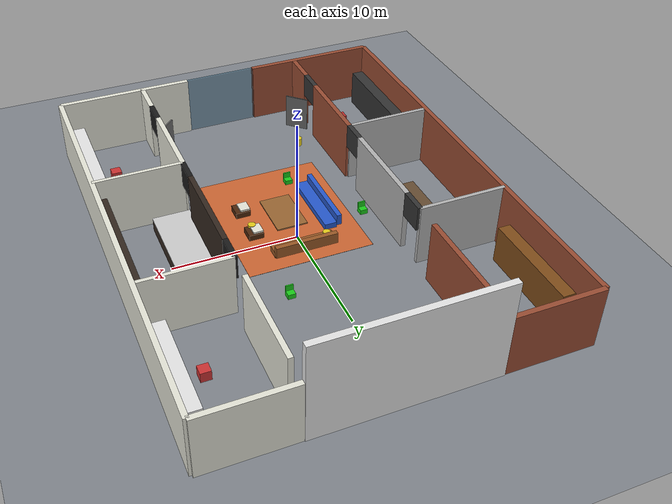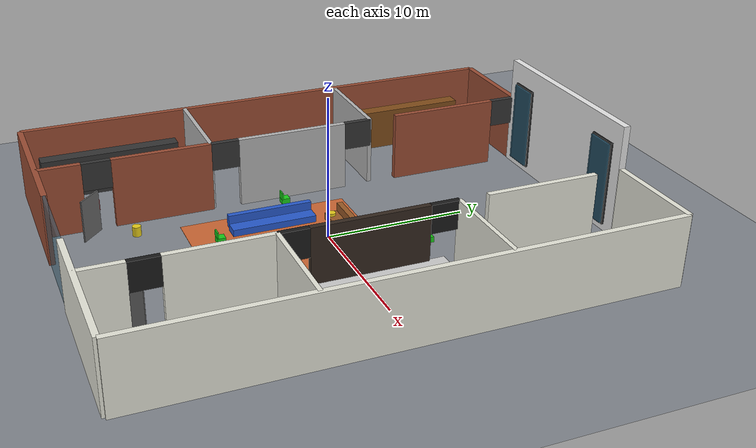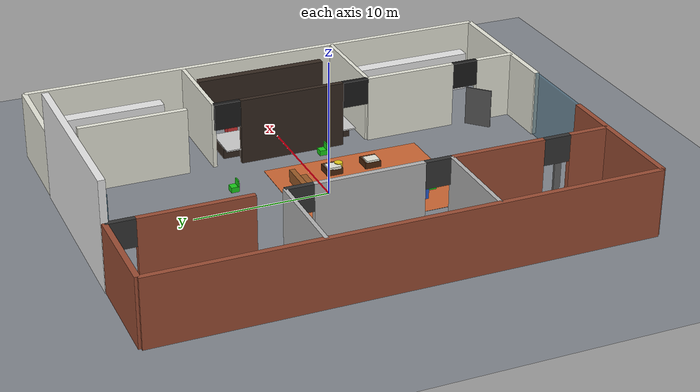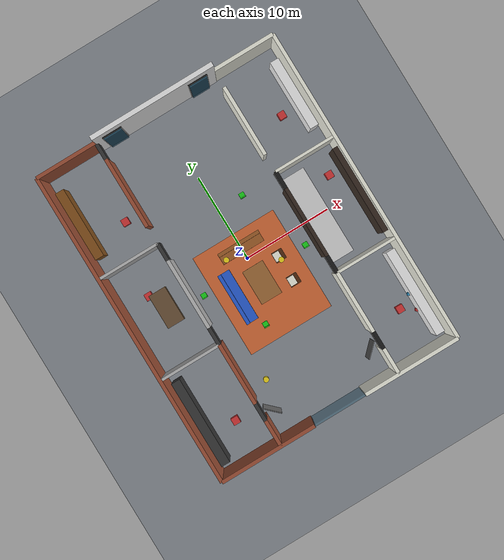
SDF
<?xml version="1.0" ?>
<sdf version="1.6">
  <world name="factory_premium_grand">

    <!-- Environment & Lighting -->
    <include><uri>model://sun</uri></include>
    <scene>
      <ambient>0.7 0.7 0.7 1</ambient>
      <background>0.9 0.95 1.0 1</background>
      <shadows>true</shadows>
    </scene>

    <!-- Polished Concrete Floor -->
    <model name="ground_plane">
      <static>true</static>
      <link name="link">
        <collision name="collision"><geometry><plane><normal>0 0 1</normal><size>100 100</size></plane></geometry></collision>
        <visual name="visual">
          <geometry><plane><normal>0 0 1</normal><size>100 100</size></plane></geometry>
          <material>
            <ambient>0.45 0.47 0.5 1</ambient>
            <diffuse>0.5 0.52 0.55 1</diffuse>
            <specular>0.3 0.3 0.3 1</specular>
          </material>
        </visual>
      </link>
    </model>

    <!-- GRAND BACK WALL & WINDOW ARCHITECTURE (With New Black Extensions) -->
    <model name="back_grand_wall">
      <static>true</static>
      <link name="link">
        <!-- Center Windowed Wall -->
        <visual name="bw"><pose>0 18 4.0 0 0 0</pose><geometry><box><size>14 0.5 8.0</size></box></geometry><material><ambient>0.9 0.9 0.9 1</ambient></material></visual>
        <collision name="bwc"><pose>0 18 4.0 0 0 0</pose><geometry><box><size>14 0.5 8.0</size></box></geometry></collision>

        <visual name="win_l_trim"><pose>-5 17.9 3.5 0 0 0</pose><geometry><box><size>2.2 0.6 6.0</size></box></geometry><material><ambient>0.1 0.1 0.1 1</ambient></material></visual>
        <visual name="win_l_glass"><pose>-5 17.8 3.5 0 0 0</pose><geometry><box><size>2.0 0.7 5.8</size></box></geometry><material><ambient>0.2 0.4 0.5 0.8</ambient></material></visual>

        <visual name="win_r_trim"><pose>5 17.9 3.5 0 0 0</pose><geometry><box><size>2.2 0.6 6.0</size></box></geometry><material><ambient>0.1 0.1 0.1 1</ambient></material></visual>
        <visual name="win_r_glass"><pose>5 17.8 3.5 0 0 0</pose><geometry><box><size>2.0 0.7 5.8</size></box></geometry><material><ambient>0.2 0.4 0.5 0.8</ambient></material></visual>

        <!-- NEW: Left Back Extension (Brick) from Black Lines -->
        <visual name="bw_left_ext"><pose>-10.5 18 2.5 0 0 0</pose><geometry><box><size>7.0 0.4 5.0</size></box></geometry><material><ambient>0.6 0.3 0.2 1</ambient></material></visual>
        <collision name="bw_left_ext_c"><pose>-10.5 18 2.5 0 0 0</pose><geometry><box><size>7.0 0.4 5.0</size></box></geometry></collision>

        <!-- NEW: Right Back Extension (Cream) from Black Lines -->
        <visual name="bw_right_ext"><pose>10.5 18 2.5 0 0 0</pose><geometry><box><size>7.0 0.4 5.0</size></box></geometry><material><ambient>0.9 0.9 0.85 1</ambient></material></visual>
        <collision name="bw_right_ext_c"><pose>10.5 18 2.5 0 0 0</pose><geometry><box><size>7.0 0.4 5.0</size></box></geometry></collision>
      </link>
    </model>

    <!-- NEW: GRAND FRONT ENCLOSURE (Black Lines Across Front)             -->
    <model name="front_grand_wall">
      <static>true</static>
      <link name="link">
        <!-- Left Front (Brick) -->
        <visual name="fw_left"><pose>-8.5 -18 2.5 0 0 0</pose><geometry><box><size>11 0.4 5.0</size></box></geometry><material><ambient>0.6 0.3 0.2 1</ambient></material></visual>
        <collision name="fw_left_c"><pose>-8.5 -18 2.5 0 0 0</pose><geometry><box><size>11 0.4 5.0</size></box></geometry></collision>

        <!-- Right Front (Cream) -->
        <visual name="fw_right"><pose>8.5 -18 2.5 0 0 0</pose><geometry><box><size>11 0.4 5.0</size></box></geometry><material><ambient>0.9 0.9 0.85 1</ambient></material></visual>
        <collision name="fw_right_c"><pose>8.5 -18 2.5 0 0 0</pose><geometry><box><size>11 0.4 5.0</size></box></geometry></collision>

        <!-- Center Glass Entrance (To keep it premium) -->
        <visual name="fw_glass"><pose>0 -18 2.5 0 0 0</pose><geometry><box><size>6 0.2 5.0</size></box></geometry><material><ambient>0.2 0.4 0.5 0.5</ambient></material></visual>
        <collision name="fw_glass_c"><pose>0 -18 2.5 0 0 0</pose><geometry><box><size>6 0.2 5.0</size></box></geometry></collision>
      </link>
    </model>

    <!-- LEFT WING (ROOMS 1, 2, 3) - BRICK EXTERIOR                        -->
    <model name="left_wing">
      <static>true</static>
      <link name="walls">
        <collision name="lw_out"><pose>-14 0 2.5 0 0 0</pose><geometry><box><size>0.4 36 5.0</size></box></geometry></collision>
        <visual name="lw_out_v"><pose>-14 0 2.5 0 0 0</pose><geometry><box><size>0.4 36 5.0</size></box></geometry><material><ambient>0.6 0.3 0.2 1</ambient></material></visual>

        <!-- Front Facade Facing Hall -->
        <!-- NEW: Gray lines added a Doorway & Gray Door to Room 1 -->
        <visual name="f1_a"><pose>-7 -16.5 2.5 0 0 0</pose><geometry><box><size>0.4 3.0 5.0</size></box></geometry><material><ambient>0.6 0.3 0.2 1</ambient></material></visual>
        <collision name="f1_a_c"><pose>-7 -16.5 2.5 0 0 0</pose><geometry><box><size>0.4 3.0 5.0</size></box></geometry></collision>

        <visual name="f1_b"><pose>-7 -9.5 2.5 0 0 0</pose><geometry><box><size>0.4 7.0 5.0</size></box></geometry><material><ambient>0.6 0.3 0.2 1</ambient></material></visual>
        <collision name="f1_b_c"><pose>-7 -9.5 2.5 0 0 0</pose><geometry><box><size>0.4 7.0 5.0</size></box></geometry></collision>

        <visual name="dh_new_left"><pose>-7 -14 4.0 0 0 0</pose><geometry><box><size>0.4 2.0 2.0</size></box></geometry><material><ambient>0.2 0.2 0.2 1</ambient></material></visual>

        <!-- The Open Gray Door -->
        <visual name="door_left"><pose>-6.0 -14.8 1.5 0 0 0.8</pose><geometry><box><size>0.1 2.0 3.0</size></box></geometry><material><ambient>0.4 0.4 0.4 1</ambient></material></visual>
        <collision name="door_left_c"><pose>-6.0 -14.8 1.5 0 0 0.8</pose><geometry><box><size>0.1 2.0 3.0</size></box></geometry></collision>

        <visual name="f2"><pose>-7 0 2.5 0 0 0</pose><geometry><box><size>0.4 8 5.0</size></box></geometry><material><ambient>0.7 0.7 0.7 1</ambient></material></visual>
        <collision name="f2_c"><pose>-7 0 2.5 0 0 0</pose><geometry><box><size>0.4 8 5.0</size></box></geometry></collision>
        <visual name="f3"><pose>-7 12 2.5 0 0 0</pose><geometry><box><size>0.4 8 5.0</size></box></geometry><material><ambient>0.6 0.3 0.2 1</ambient></material></visual>
        <collision name="f3_c"><pose>-7 12 2.5 0 0 0</pose><geometry><box><size>0.4 8 5.0</size></box></geometry></collision>

        <visual name="dh1"><pose>-7 -5 4.0 0 0 0</pose><geometry><box><size>0.4 2 2.0</size></box></geometry><material><ambient>0.2 0.2 0.2 1</ambient></material></visual>
        <visual name="dh2"><pose>-7 5 4.0 0 0 0</pose><geometry><box><size>0.4 2 2.0</size></box></geometry><material><ambient>0.2 0.2 0.2 1</ambient></material></visual>
        <visual name="dh3"><pose>-7 17 4.0 0 0 0</pose><geometry><box><size>0.4 2 2.0</size></box></geometry><material><ambient>0.2 0.2 0.2 1</ambient></material></visual>

        <visual name="div1"><pose>-10.5 -6 2.5 0 0 0</pose><geometry><box><size>7.0 0.3 5.0</size></box></geometry><material><ambient>0.7 0.7 0.7 1</ambient></material></visual>
        <collision name="div1_c"><pose>-10.5 -6 2.5 0 0 0</pose><geometry><box><size>7.0 0.3 5.0</size></box></geometry></collision>
        <visual name="div2"><pose>-10.5 6 2.5 0 0 0</pose><geometry><box><size>7.0 0.3 5.0</size></box></geometry><material><ambient>0.7 0.7 0.7 1</ambient></material></visual>
        <collision name="div2_c"><pose>-10.5 6 2.5 0 0 0</pose><geometry><box><size>7.0 0.3 5.0</size></box></geometry></collision>
      </link>
    </model>

    <!-- LEFT WING FURNITURE -->
    <model name="left_furniture">
      <static>true</static>
      <link name="link">
        <visual name="r1_shelf"><pose>-13 -12 1.5 0 0 0</pose><geometry><box><size>1.0 10 3.0</size></box></geometry><material><ambient>0.2 0.2 0.2 1</ambient></material></visual>
        <collision name="r1_shelf_c"><pose>-13 -12 1.5 0 0 0</pose><geometry><box><size>1.0 10 3.0</size></box></geometry></collision>
        <visual name="r2_bench"><pose>-10 0 0.5 0 0 0</pose><geometry><box><size>2.0 4.0 1.0</size></box></geometry><material><ambient>0.4 0.3 0.2 1</ambient></material></visual>
        <collision name="r2_bench_c"><pose>-10 0 0.5 0 0 0</pose><geometry><box><size>2.0 4.0 1.0</size></box></geometry></collision>
        <visual name="r3_shelf"><pose>-13 12 1.5 0 0 0</pose><geometry><box><size>1.0 8 3.0</size></box></geometry><material><ambient>0.5 0.3 0.1 1</ambient></material></visual>
        <collision name="r3_shelf_c"><pose>-13 12 1.5 0 0 0</pose><geometry><box><size>1.0 8 3.0</size></box></geometry></collision>
      </link>
    </model>

    <!-- RIGHT WING (ROOMS 4, 5 & COUNTER) - CREAM & DARK TRIM             -->
    <model name="right_wing">
      <static>true</static>
      <link name="walls">
        <collision name="rw_out"><pose>14 0 2.5 0 0 0</pose><geometry><box><size>0.4 36 5.0</size></box></geometry></collision>
        <visual name="rw_out_v"><pose>14 0 2.5 0 0 0</pose><geometry><box><size>0.4 36 5.0</size></box></geometry><material><ambient>0.9 0.9 0.85 1</ambient></material></visual>

        <!-- Front Facade Facing Hall -->
        <!-- NEW: Gray lines added a Doorway & Gray Door to Room 5 -->
        <visual name="rf1_a"><pose>7 -16.5 2.5 0 0 0</pose><geometry><box><size>0.4 3.0 5.0</size></box></geometry><material><ambient>0.9 0.9 0.85 1</ambient></material></visual>
        <collision name="rf1_a_c"><pose>7 -16.5 2.5 0 0 0</pose><geometry><box><size>0.4 3.0 5.0</size></box></geometry></collision>

        <visual name="rf1_b"><pose>7 -9.5 2.5 0 0 0</pose><geometry><box><size>0.4 7.0 5.0</size></box></geometry><material><ambient>0.9 0.9 0.85 1</ambient></material></visual>
        <collision name="rf1_b_c"><pose>7 -9.5 2.5 0 0 0</pose><geometry><box><size>0.4 7.0 5.0</size></box></geometry></collision>

        <visual name="dh_new_right"><pose>7 -14 4.0 0 0 0</pose><geometry><box><size>0.4 2.0 2.0</size></box></geometry><material><ambient>0.1 0.1 0.1 1</ambient></material></visual>

        <!-- The Open Gray Door -->
        <visual name="door_right"><pose>6.0 -14.8 1.5 0 0 -0.8</pose><geometry><box><size>0.1 2.0 3.0</size></box></geometry><material><ambient>0.4 0.4 0.4 1</ambient></material></visual>
        <collision name="door_right_c"><pose>6.0 -14.8 1.5 0 0 -0.8</pose><geometry><box><size>0.1 2.0 3.0</size></box></geometry></collision>

        <visual name="rf2"><pose>7 0 2.5 0 0 0</pose><geometry><box><size>0.4 8 5.0</size></box></geometry><material><ambient>0.2 0.15 0.12 1</ambient></material></visual>
        <collision name="rf2_c"><pose>7 0 2.5 0 0 0</pose><geometry><box><size>0.4 8 5.0</size></box></geometry></collision>
        <visual name="rf3"><pose>7 12 2.5 0 0 0</pose><geometry><box><size>0.4 8 5.0</size></box></geometry><material><ambient>0.9 0.9 0.85 1</ambient></material></visual>
        <collision name="rf3_c"><pose>7 12 2.5 0 0 0</pose><geometry><box><size>0.4 8 5.0</size></box></geometry></collision>

        <visual name="rdh1"><pose>7 -5 4.0 0 0 0</pose><geometry><box><size>0.4 2 2.0</size></box></geometry><material><ambient>0.1 0.1 0.1 1</ambient></material></visual>
        <visual name="rdh2"><pose>7 5 4.0 0 0 0</pose><geometry><box><size>0.4 2 2.0</size></box></geometry><material><ambient>0.1 0.1 0.1 1</ambient></material></visual>

        <visual name="rdiv1"><pose>10.5 -6 2.5 0 0 0</pose><geometry><box><size>7.0 0.3 5.0</size></box></geometry><material><ambient>0.9 0.9 0.85 1</ambient></material></visual>
        <collision name="rdiv1_c"><pose>10.5 -6 2.5 0 0 0</pose><geometry><box><size>7.0 0.3 5.0</size></box></geometry></collision>
        <visual name="rdiv2"><pose>10.5 6 2.5 0 0 0</pose><geometry><box><size>7.0 0.3 5.0</size></box></geometry><material><ambient>0.9 0.9 0.85 1</ambient></material></visual>
        <collision name="rdiv2_c"><pose>10.5 6 2.5 0 0 0</pose><geometry><box><size>7.0 0.3 5.0</size></box></geometry></collision>
      </link>
    </model>

    <!-- RIGHT WING FURNITURE -->
    <model name="right_furniture">
      <static>true</static>
      <link name="link">
        <visual name="r5_shelf"><pose>13 -12 1.5 0 0 0</pose><geometry><box><size>1.0 10 3.0</size></box></geometry><material><ambient>0.9 0.9 0.9 1</ambient></material></visual>
        <collision name="r5_shelf_c"><pose>13 -12 1.5 0 0 0</pose><geometry><box><size>1.0 10 3.0</size></box></geometry></collision>
        <visual name="r5_c1"><pose>12.5 -14 0.5 0 0 0</pose><geometry><cylinder><radius>0.2</radius><length>0.6</length></cylinder></geometry><material><ambient>0.8 0.2 0.2 1</ambient></material></visual>
        <visual name="r5_c2"><pose>12.5 -12 1.5 0 0 0</pose><geometry><cylinder><radius>0.2</radius><length>0.6</length></cylinder></geometry><material><ambient>0.2 0.6 0.8 1</ambient></material></visual>

        <!-- PREMIUM COUNTER -->
        <collision name="counter_c"><pose>9 0 0.6 0 0 0</pose><geometry><box><size>3.0 10 1.2</size></box></geometry></collision>
        <visual name="counter_base"><pose>9 0 0.5 0 0 0</pose><geometry><box><size>2.0 10 1.0</size></box></geometry><material><ambient>0.2 0.15 0.12 1</ambient></material></visual>
        <visual name="counter_top"><pose>8.5 0 1.05 0 0 0</pose><geometry><box><size>3.0 10.2 0.1</size></box></geometry><material><ambient>0.8 0.8 0.8 1</ambient></material></visual>
        <visual name="counter_back"><pose>13.5 0 2.0 0 0 0</pose><geometry><box><size>0.6 10 4.0</size></box></geometry><material><ambient>0.2 0.15 0.12 1</ambient></material></visual>

        <visual name="r4_shelf"><pose>13 12 1.5 0 0 0</pose><geometry><box><size>1.0 8 3.0</size></box></geometry><material><ambient>0.9 0.9 0.9 1</ambient></material></visual>
        <collision name="r4_shelf_c"><pose>13 12 1.5 0 0 0</pose><geometry><box><size>1.0 8 3.0</size></box></geometry></collision>
      </link>
    </model>

    <!-- CENTER LOUNGE (MASSIVE RUG, BLUE & BROWN SOFAS)                   -->
    <model name="center_lounge">
      <static>true</static>
      <link name="link">
        <visual name="main_rug"><pose>0 -3 0.01 0 0 0</pose><geometry><box><size>10 12 0.02</size></box></geometry>
          <material><ambient>0.7 0.3 0.15 1</ambient><diffuse>0.8 0.4 0.2 1</diffuse></material></visual>

        <collision name="blue_sofa_c"><pose>-3 -3 0.5 0 0 0</pose><geometry><box><size>1.4 6.0 1.0</size></box></geometry></collision>
        <visual name="blue_seat"><pose>-2.8 -3 0.25 0 0 0</pose><geometry><box><size>1.0 6.0 0.5</size></box></geometry>
          <material><ambient>0.1 0.25 0.6 1</ambient><diffuse>0.15 0.35 0.8 1</diffuse></material></visual>
        <visual name="blue_back"><pose>-3.5 -3 0.65 0 0 0</pose><geometry><box><size>0.4 6.0 0.9</size></box></geometry>
          <material><ambient>0.1 0.25 0.6 1</ambient><diffuse>0.15 0.35 0.8 1</diffuse></material></visual>

        <collision name="brown_sofa_c"><pose>0 1.5 0.5 0 0 0</pose><geometry><box><size>5.0 1.4 1.0</size></box></geometry></collision>
        <visual name="brown_seat"><pose>0 1.2 0.25 0 0 0</pose><geometry><box><size>5.0 1.0 0.5</size></box></geometry>
          <material><ambient>0.5 0.25 0.1 1</ambient><diffuse>0.6 0.35 0.15 1</diffuse></material></visual>
        <visual name="brown_back"><pose>0 1.8 0.65 0 0 0</pose><geometry><box><size>5.0 0.4 0.9</size></box></geometry>
          <material><ambient>0.5 0.25 0.1 1</ambient><diffuse>0.6 0.35 0.15 1</diffuse></material></visual>

        <!-- Wood armchairs -->
        <collision name="chair1_c"><pose>3 -1.5 0.4 0 0 0</pose><geometry><box><size>1.2 1.2 0.9</size></box></geometry></collision>
        <visual name="c1_frame"><pose>3 -1.5 0.25 0 0 0</pose><geometry><box><size>1.2 1.2 0.5</size></box></geometry><material><ambient>0.3 0.15 0.05 1</ambient></material></visual>
        <visual name="c1_cushion"><pose>2.8 -1.5 0.55 0 0 0</pose><geometry><box><size>0.8 1.0 0.2</size></box></geometry><material><ambient>0.9 0.9 0.85 1</ambient></material></visual>

        <collision name="chair2_c"><pose>3 -4.5 0.4 0 0 0</pose><geometry><box><size>1.2 1.2 0.9</size></box></geometry></collision>
        <visual name="c2_frame"><pose>3 -4.5 0.25 0 0 0</pose><geometry><box><size>1.2 1.2 0.5</size></box></geometry><material><ambient>0.3 0.15 0.05 1</ambient></material></visual>
        <visual name="c2_cushion"><pose>2.8 -4.5 0.55 0 0 0</pose><geometry><box><size>0.8 1.0 0.2</size></box></geometry><material><ambient>0.9 0.9 0.85 1</ambient></material></visual>

        <collision name="coffee_c"><pose>0 -3 0.35 0 0 0</pose><geometry><box><size>2.5 4.0 0.7</size></box></geometry></collision>
        <visual name="coffee_top"><pose>0 -3 0.3 0 0 0</pose><geometry><box><size>2.5 4.0 0.1</size></box></geometry><material><ambient>0.6 0.4 0.2 1</ambient></material></visual>
        <visual name="coffee_base"><pose>0 -3 0.15 0 0 0</pose><geometry><box><size>2.0 3.5 0.3</size></box></geometry><material><ambient>0.2 0.1 0.05 1</ambient></material></visual>
      </link>
    </model>

    <!-- USER CUSTOM ADDITIONS (RED BOXES, GREEN CHAIRS, YELLOW LAMPS)     -->
    <model name="user_custom_objects">
      <static>true</static>
      <link name="link">

        <!-- RED CIRCLES: Medium Boxes -->
        <visual name="rb1_v"><pose>-10 -14 0.4 0 0 0</pose><geometry><box><size>0.8 0.8 0.8</size></box></geometry><material><ambient>0.8 0.2 0.2 1</ambient></material></visual>
        <collision name="rb1_c"><pose>-10 -14 0.4 0 0 0</pose><geometry><box><size>0.8 0.8 0.8</size></box></geometry></collision>

        <visual name="rb2_v"><pose>-11 2 0.4 0 0 0</pose><geometry><box><size>0.8 0.8 0.8</size></box></geometry><material><ambient>0.8 0.2 0.2 1</ambient></material></visual>
        <collision name="rb2_c"><pose>-11 2 0.4 0 0 0</pose><geometry><box><size>0.8 0.8 0.8</size></box></geometry></collision>

        <visual name="rb3_v"><pose>-9 10 0.4 0 0 0</pose><geometry><box><size>0.8 0.8 0.8</size></box></geometry><material><ambient>0.8 0.2 0.2 1</ambient></material></visual>
        <collision name="rb3_c"><pose>-9 10 0.4 0 0 0</pose><geometry><box><size>0.8 0.8 0.8</size></box></geometry></collision>

        <visual name="rb4_v"><pose>11 -13 0.4 0 0 0</pose><geometry><box><size>0.8 0.8 0.8</size></box></geometry><material><ambient>0.8 0.2 0.2 1</ambient></material></visual>
        <collision name="rb4_c"><pose>11 -13 0.4 0 0 0</pose><geometry><box><size>0.8 0.8 0.8</size></box></geometry></collision>

        <visual name="rb5_v"><pose>12 3 0.4 0 0 0</pose><geometry><box><size>0.8 0.8 0.8</size></box></geometry><material><ambient>0.8 0.2 0.2 1</ambient></material></visual>
        <collision name="rb5_c"><pose>12 3 0.4 0 0 0</pose><geometry><box><size>0.8 0.8 0.8</size></box></geometry></collision>

        <visual name="rb6_v"><pose>11 11 0.4 0 0 0</pose><geometry><box><size>0.8 0.8 0.8</size></box></geometry><material><ambient>0.8 0.2 0.2 1</ambient></material></visual>
        <collision name="rb6_c"><pose>11 11 0.4 0 0 0</pose><geometry><box><size>0.8 0.8 0.8</size></box></geometry></collision>

        <!-- GREEN CIRCLES: Chairs (Seat and Backrest) -->
        <visual name="gc1_seat"><pose>6 -2 0.2 0 0 0</pose><geometry><box><size>0.6 0.6 0.4</size></box></geometry><material><ambient>0.1 0.8 0.1 1</ambient></material></visual>
        <visual name="gc1_back"><pose>6 -2.25 0.6 0 0 0</pose><geometry><box><size>0.6 0.1 0.5</size></box></geometry><material><ambient>0.1 0.8 0.1 1</ambient></material></visual>
        <collision name="gc1_c"><pose>6 -2 0.4 0 0 0</pose><geometry><box><size>0.6 0.6 0.8</size></box></geometry></collision>

        <visual name="gc2_seat"><pose>-2 -7 0.2 0 0 0</pose><geometry><box><size>0.6 0.6 0.4</size></box></geometry><material><ambient>0.1 0.8 0.1 1</ambient></material></visual>
        <visual name="gc2_back"><pose>-2 -7.25 0.6 0 0 0</pose><geometry><box><size>0.6 0.1 0.5</size></box></geometry><material><ambient>0.1 0.8 0.1 1</ambient></material></visual>
        <collision name="gc2_c"><pose>-2 -7 0.4 0 0 0</pose><geometry><box><size>0.6 0.6 0.8</size></box></geometry></collision>

        <visual name="gc3_seat"><pose>-6 -1 0.2 0 0 0</pose><geometry><box><size>0.6 0.6 0.4</size></box></geometry><material><ambient>0.1 0.8 0.1 1</ambient></material></visual>
        <visual name="gc3_back"><pose>-6 -1.25 0.6 0 0 0</pose><geometry><box><size>0.6 0.1 0.5</size></box></geometry><material><ambient>0.1 0.8 0.1 1</ambient></material></visual>
        <collision name="gc3_c"><pose>-6 -1 0.4 0 0 0</pose><geometry><box><size>0.6 0.6 0.8</size></box></geometry></collision>

        <visual name="gc4_seat"><pose>3 6 0.2 0 0 0</pose><geometry><box><size>0.6 0.6 0.4</size></box></geometry><material><ambient>0.1 0.8 0.1 1</ambient></material></visual>
        <visual name="gc4_back"><pose>3 5.75 0.6 0 0 0</pose><geometry><box><size>0.6 0.1 0.5</size></box></geometry><material><ambient>0.1 0.8 0.1 1</ambient></material></visual>
        <collision name="gc4_c"><pose>3 6 0.4 0 0 0</pose><geometry><box><size>0.6 0.6 0.8</size></box></geometry></collision>

        <!-- YELLOW CIRCLES: Lamp Tables (Decorative Cylinders) -->
        <visual name="yt1_v"><pose>-5 -12 0.35 0 0 0</pose><geometry><cylinder><radius>0.3</radius><length>0.7</length></cylinder></geometry><material><ambient>0.9 0.8 0.1 1</ambient></material></visual>
        <collision name="yt1_c"><pose>-5 -12 0.35 0 0 0</pose><geometry><cylinder><radius>0.3</radius><length>0.7</length></cylinder></geometry></collision>

        <visual name="yt2_v"><pose>-2 1 0.35 0 0 0</pose><geometry><cylinder><radius>0.3</radius><length>0.7</length></cylinder></geometry><material><ambient>0.9 0.8 0.1 1</ambient></material></visual>
        <collision name="yt2_c"><pose>-2 1 0.35 0 0 0</pose><geometry><cylinder><radius>0.3</radius><length>0.7</length></cylinder></geometry></collision>

        <visual name="yt3_v"><pose>3 -2 0.35 0 0 0</pose><geometry><cylinder><radius>0.3</radius><length>0.7</length></cylinder></geometry><material><ambient>0.9 0.8 0.1 1</ambient></material></visual>
        <collision name="yt3_c"><pose>3 -2 0.35 0 0 0</pose><geometry><cylinder><radius>0.3</radius><length>0.7</length></cylinder></geometry></collision>

      </link>
    </model>

  </world>
</sdf>
